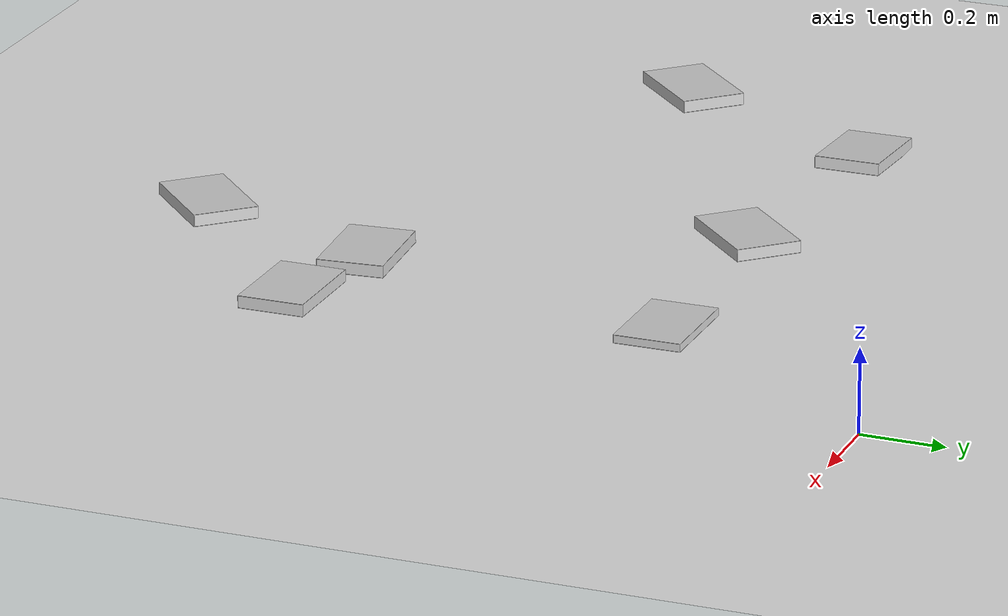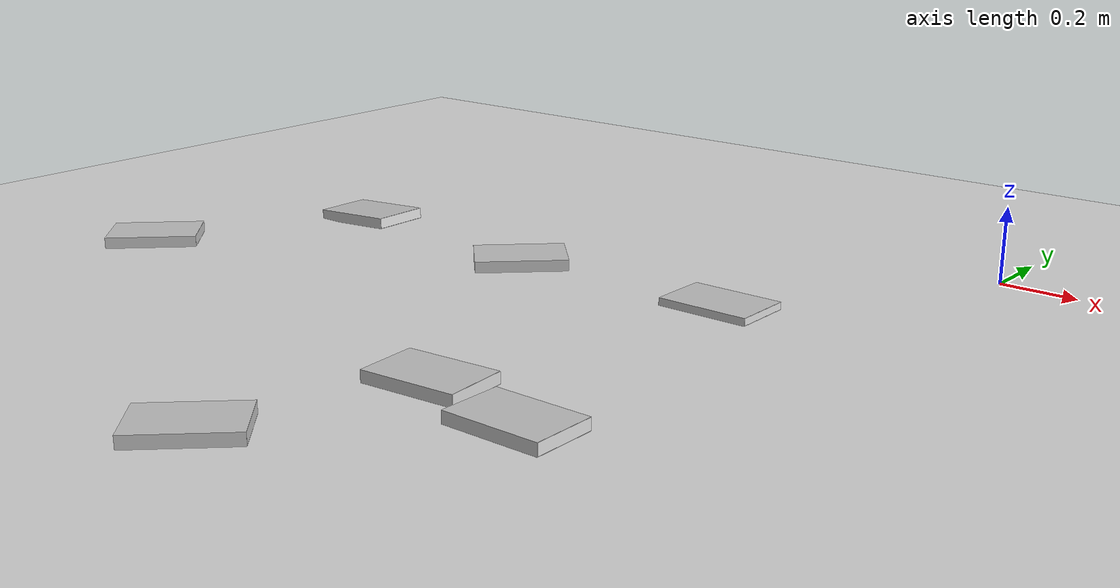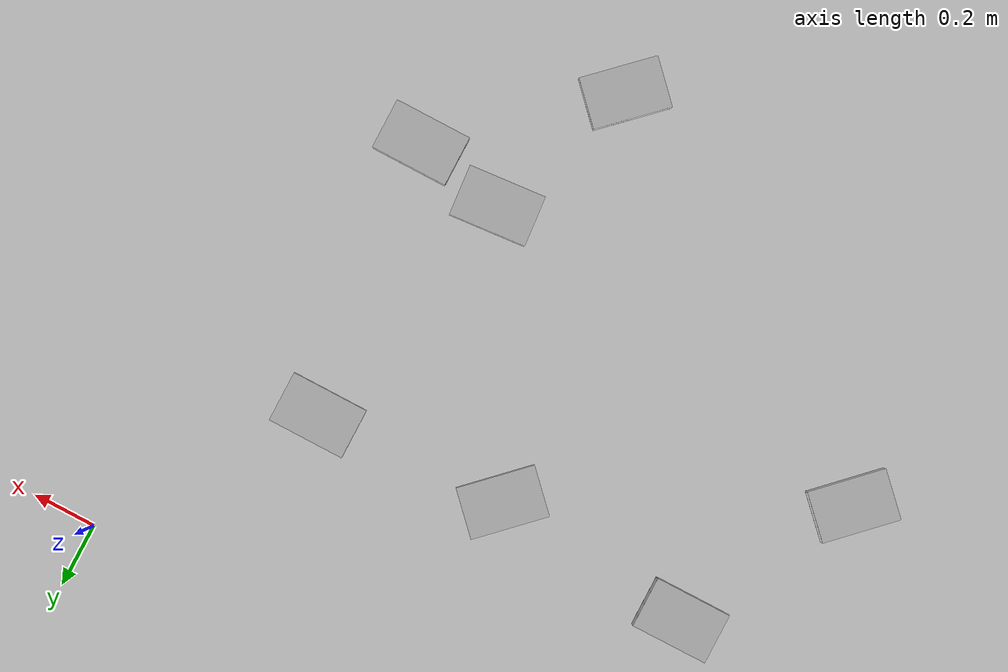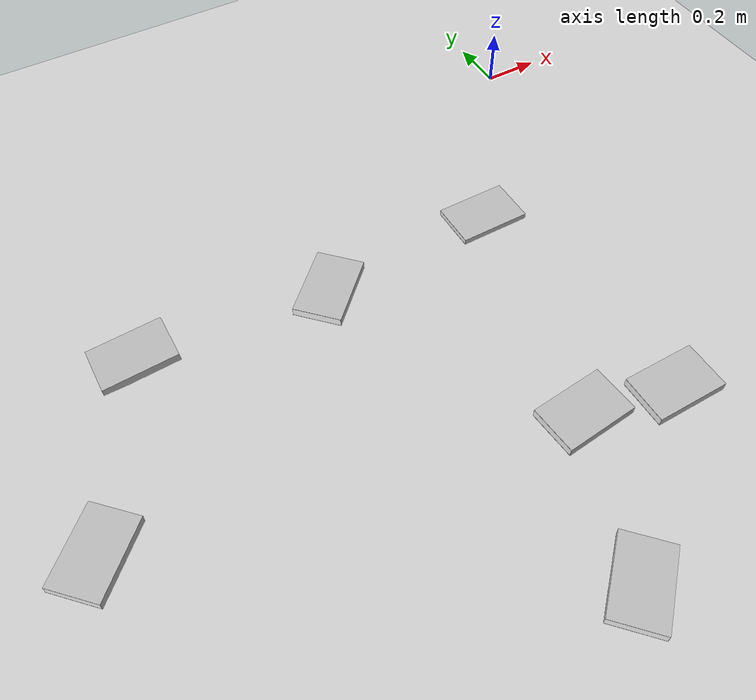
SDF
<sdf version="1.6">
 <world name="default">
  <model name="ground_plane">
   <static>1</static>
   <link name="link">
    <collision name="collision">
     <geometry><plane><normal>0 0 1</normal><size>100 100</size></plane></geometry>
     <surface><friction><ode><mu>100</mu><mu2>50</mu2></ode></friction></surface>
    </collision>
    <visual name="visual">
     <cast_shadows>0</cast_shadows>
     <geometry><plane><normal>0 0 1</normal><size>100 100</size></plane></geometry>
     <material>
      <script><uri>file://media/materials/scripts/gazebo.material</uri><name>Gazebo/Grey</name></script>
     </material>
    </visual>
   </link>
  </model>
  <model name="book_19_1">
   <link name="cover">
    <pose>0 -0.000108 0.015405 0 -0 0</pose>
    <visual name="visual">
     <geometry><box><size>0.245 0.16 0.03</size></box></geometry>
     <material>
      <script>
       <uri>model://book_19/materials/scripts</uri>
       <uri>model://book_19/materials/textures</uri>
       <name>book_19</name>
      </script>
     </material>
    </visual>
    <collision name="collision"><geometry><box><size>0.245 0.16 0.03</size></box></geometry></collision>
   </link>
   <link name="page">
    <pose>0 0.000608 0.015405 0 -0 0</pose>
    <visual name="visual">
     <geometry><box><size>0.24502 0.15862 0.028</size></box></geometry>
     <material>
      <lighting>1</lighting>
      <ambient>1 1 1 1</ambient>
      <diffuse>1 1 1 1</diffuse>
      <specular>0.01 0.01 0.01 1</specular>
      <emissive>0 0 0 1</emissive>
      <shader type="vertex"><normal_map>__default__</normal_map></shader>
     </material>
    </visual>
    <collision name="collision"><geometry><box><size>0.245 0.16 0.03</size></box></geometry></collision>
   </link>
   <static>1</static>
   <pose>-1.68794 -0.576578 0 0 -0.058346 0</pose>
  </model>
  <model name="book_2_0">
   <link name="cover">
    <pose>0 -0.000108 0.015405 0 -0 0</pose>
    <visual name="visual">
     <geometry><box><size>0.245 0.16 0.03</size></box></geometry>
     <material>
      <script>
       <uri>model://book_2/materials/scripts</uri>
       <uri>model://book_2/materials/textures</uri>
       <name>book_2</name>
      </script>
     </material>
    </visual>
    <collision name="collision"><geometry><box><size>0.245 0.16 0.03</size></box></geometry></collision>
   </link>
   <link name="page">
    <pose>0 0.000608 0.015405 0 -0 0</pose>
    <visual name="visual">
     <geometry><box><size>0.24502 0.15862 0.028</size></box></geometry>
     <material>
      <lighting>1</lighting>
      <ambient>1 1 1 1</ambient>
      <diffuse>1 1 1 1</diffuse>
      <specular>0.01 0.01 0.01 1</specular>
      <emissive>0 0 0 1</emissive>
      <shader type="vertex"><normal_map>__default__</normal_map></shader>
     </material>
    </visual>
    <collision name="collision"><geometry><box><size>0.245 0.16 0.03</size></box></geometry></collision>
   </link>
   <static>1</static>
   <pose>-1.05296 -0.639639 0 0 -0 0.7712</pose>
  </model>
  <model name="book_20_0">
   <link name="cover">
    <pose>0 -0.000108 0.015405 0 -0 0</pose>
    <visual name="visual">
     <geometry><box><size>0.245 0.16 0.03</size></box></geometry>
     <material>
      <script>
       <uri>model://book_20/materials/scripts</uri>
       <uri>model://book_20/materials/textures</uri>
       <name>book_20</name>
      </script>
     </material>
    </visual>
    <collision name="collision"><geometry><box><size>0.245 0.16 0.03</size></box></geometry></collision>
   </link>
   <link name="page">
    <pose>0 0.000608 0.015405 0 -0 0</pose>
    <visual name="visual">
     <geometry><box><size>0.24502 0.15862 0.028</size></box></geometry>
     <material>
      <lighting>1</lighting>
      <ambient>1 1 1 1</ambient>
      <diffuse>1 1 1 1</diffuse>
      <specular>0.01 0.01 0.01 1</specular>
      <emissive>0 0 0 1</emissive>
      <shader type="vertex"><normal_map>__default__</normal_map></shader>
     </material>
    </visual>
    <collision name="collision"><geometry><box><size>0.245 0.16 0.03</size></box></geometry></collision>
   </link>
   <static>1</static>
   <pose>-0.805705 -1.89333 0 0 -0 0.762772</pose>
  </model>
  <model name="book_3_0">
   <link name="cover">
    <pose>0 -0.000108 0.01 0 -0 0</pose>
    <visual name="visual">
     <geometry><box><size>0.245 0.16 0.02</size></box></geometry>
     <material>
      <script>
       <uri>model://book_3/materials/scripts</uri>
       <uri>model://book_3/materials/textures</uri>
       <name>book_3</name>
      </script>
     </material>
    </visual>
    <collision name="collision"><geometry><box><size>0.245 0.16 0.02</size></box></geometry></collision>
   </link>
   <link name="page">
    <pose>0 0.000608 0.01 0 -0 0</pose>
    <visual name="visual">
     <geometry><box><size>0.24502 0.15862 0.018</size></box></geometry>
     <material>
      <lighting>1</lighting>
      <ambient>1 1 1 1</ambient>
      <diffuse>1 1 1 1</diffuse>
      <specular>0.01 0.01 0.01 1</specular>
      <emissive>0 0 0 1</emissive>
      <shader type="vertex"><normal_map>__default__</normal_map></shader>
     </material>
    </visual>
    <collision name="collision"><geometry><box><size>0.245 0.16 0.018</size></box></geometry></collision>
   </link>
   <static>1</static>
   <pose>-0.442372 -0.610657 0 0 -0 0</pose>
  </model>
  <model name="book_17_0">
   <link name="cover">
    <pose>0 -0.000108 0.015405 0 -0 0</pose>
    <visual name="visual">
     <geometry><box><size>0.245 0.16 0.03</size></box></geometry>
     <material>
      <script>
       <uri>model://book_17/materials/scripts</uri>
       <uri>model://book_17/materials/textures</uri>
       <name>book_17</name>
      </script>
     </material>
    </visual>
    <collision name="collision"><geometry><box><size>0.245 0.16 0.03</size></box></geometry></collision>
   </link>
   <link name="page">
    <pose>0 0.000608 0.015405 0 -0 0</pose>
    <visual name="visual">
     <geometry><box><size>0.24502 0.15862 0.028</size></box></geometry>
     <material>
      <lighting>1</lighting>
      <ambient>1 1 1 1</ambient>
      <diffuse>1 1 1 1</diffuse>
      <specular>0.01 0.01 0.01 1</specular>
      <emissive>0 0 0 1</emissive>
      <shader type="vertex"><normal_map>__default__</normal_map></shader>
     </material>
    </visual>
    <collision name="collision"><geometry><box><size>0.245 0.16 0.03</size></box></geometry></collision>
   </link>
   <static>1</static>
   <pose>-0.624945 -1.41561 0 0 -0 0.085511</pose>
  </model>
  <model name="book_16_0">
   <link name="cover">
    <pose>0 -0.000108 0.015405 0 -0 0</pose>
    <visual name="visual">
     <geometry><box><size>0.245 0.16 0.03</size></box></geometry>
     <material>
      <script>
       <uri>model://book_16/materials/scripts</uri>
       <uri>model://book_16/materials/textures</uri>
       <name>book_16</name>
      </script>
     </material>
    </visual>
    <collision name="collision"><geometry><box><size>0.245 0.16 0.03</size></box></geometry></collision>
   </link>
   <link name="page">
    <pose>0 0.000608 0.015405 0 -0 0</pose>
    <visual name="visual">
     <geometry><box><size>0.24502 0.15862 0.028</size></box></geometry>
     <material>
      <lighting>1</lighting>
      <ambient>1 1 1 1</ambient>
      <diffuse>1 1 1 1</diffuse>
      <specular>0.01 0.01 0.01 1</specular>
      <emissive>0 0 0 1</emissive>
      <shader type="vertex"><normal_map>__default__</normal_map></shader>
     </material>
    </visual>
    <collision name="collision"><geometry><box><size>0.245 0.16 0.03</size></box></geometry></collision>
   </link>
   <static>1</static>
   <pose>-1.98601 -1.12069 0 0 -0 0.776808</pose>
  </model>
  <model name="book_14_0">
   <link name="cover">
    <pose>0 -0.000108 0.015405 0 -0 0</pose>
    <visual name="visual">
     <geometry><box><size>0.245 0.16 0.03</size></box></geometry>
     <material>
      <script>
       <uri>model://book_14/materials/scripts</uri>
       <uri>model://book_14/materials/textures</uri>
       <name>book_14</name>
      </script>
     </material>
    </visual>
    <collision name="collision"><geometry><box><size>0.245 0.16 0.03</size></box></geometry></collision>
   </link>
   <link name="page">
    <pose>0 0.000608 0.015405 0 -0 0</pose>
    <visual name="visual">
     <geometry><box><size>0.24502 0.15862 0.028</size></box></geometry>
     <material>
      <lighting>1</lighting>
      <ambient>1 1 1 1</ambient>
      <diffuse>1 1 1 1</diffuse>
      <specular>0.01 0.01 0.01 1</specular>
      <emissive>0 0 0 1</emissive>
      <shader type="vertex"><normal_map>__default__</normal_map></shader>
     </material>
    </visual>
    <collision name="collision"><geometry><box><size>0.245 0.16 0.03</size></box></geometry></collision>
   </link>
   <static>1</static>
   <pose>-0.335014 -1.47582 0 0 -0 0</pose>
  </model>
 </world>
</sdf>
